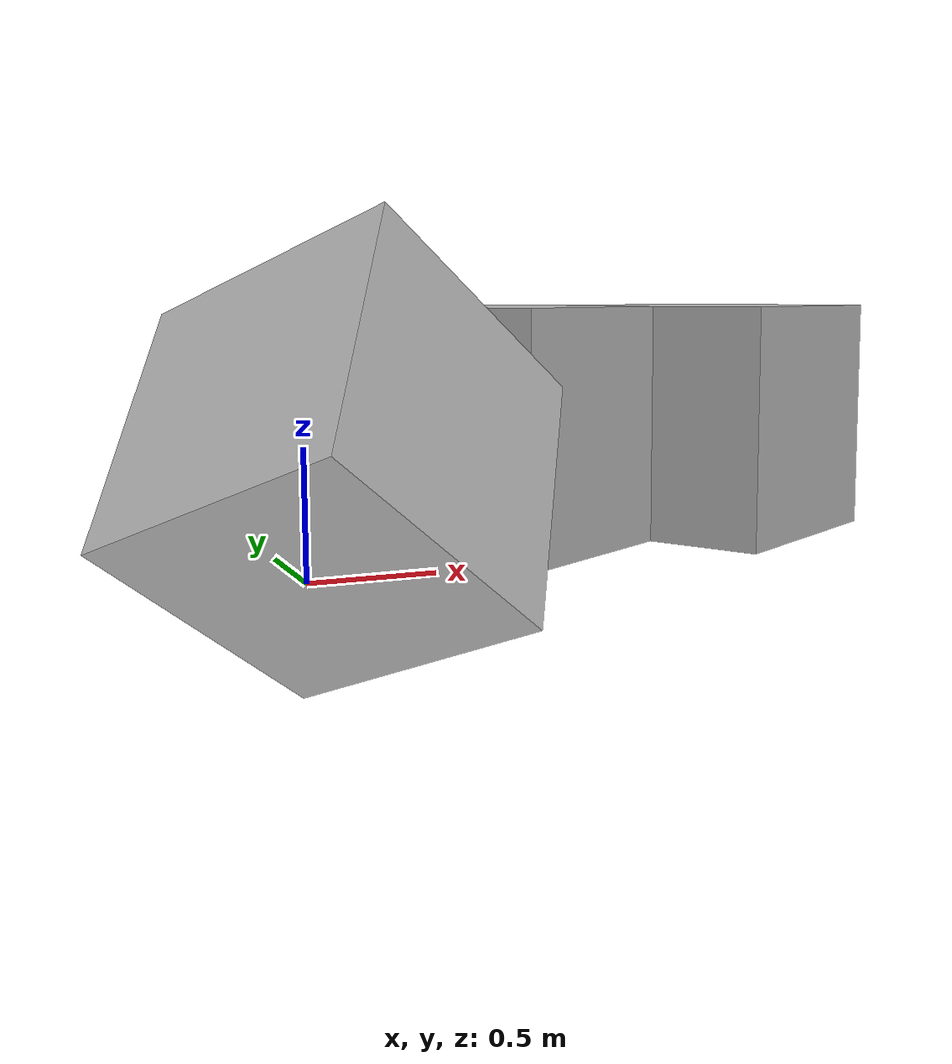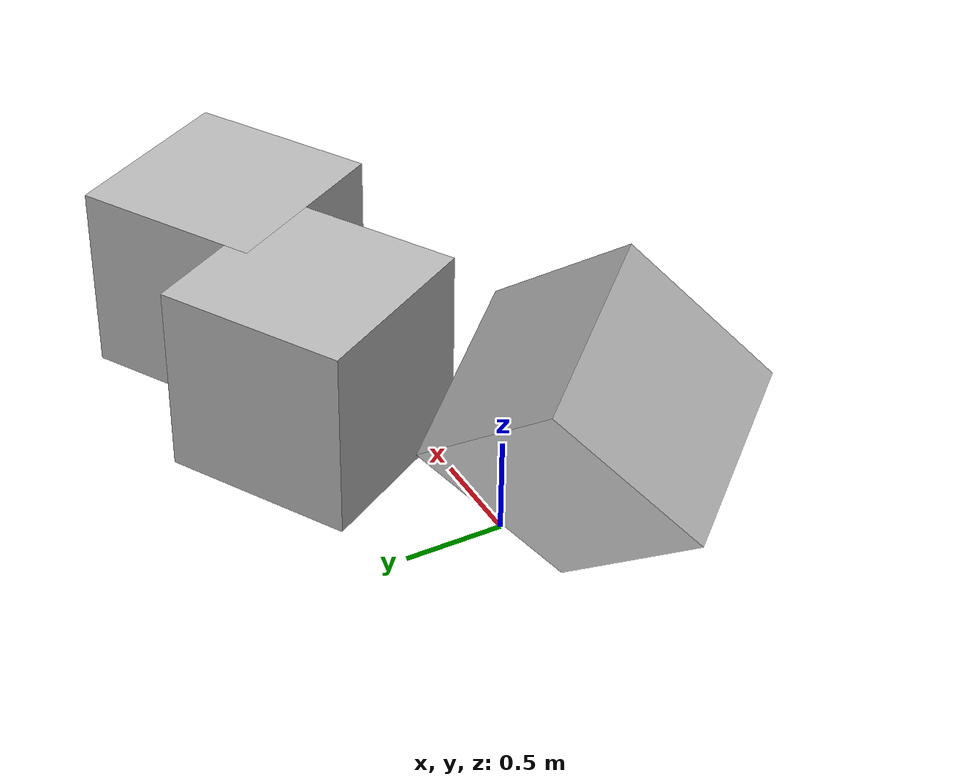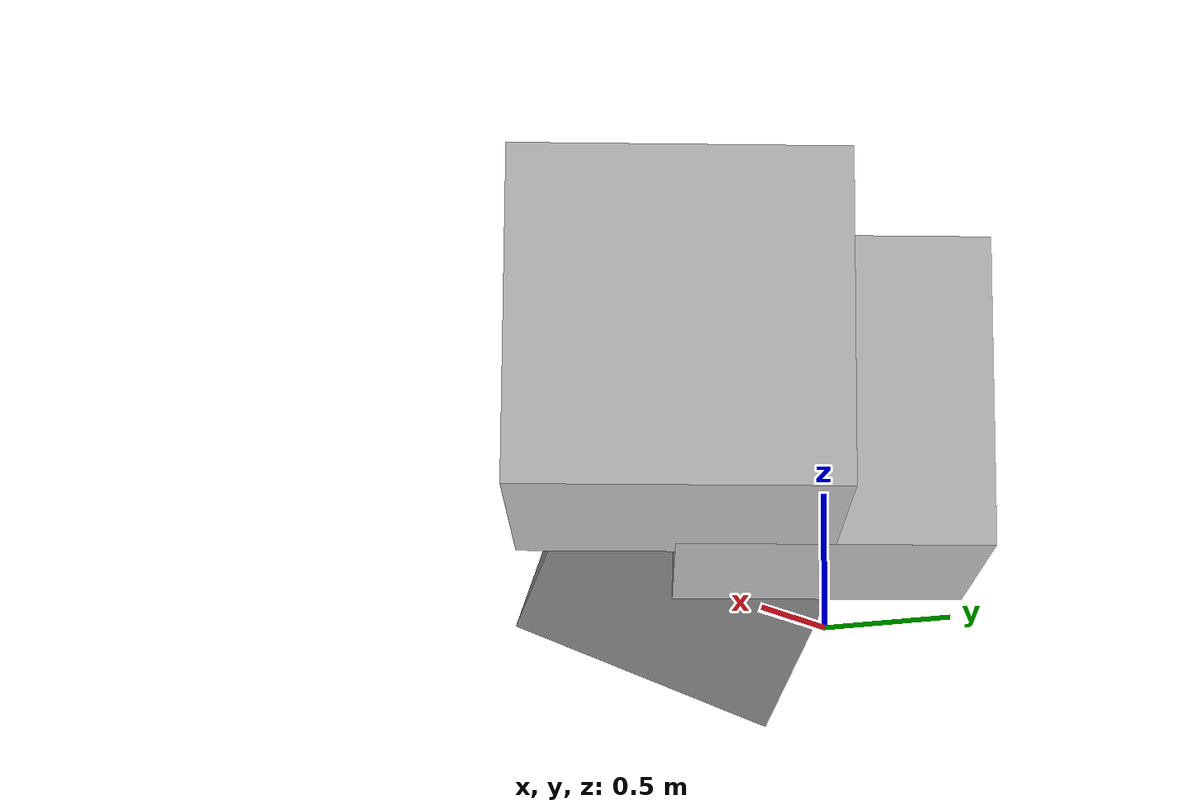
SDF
<?xml version='1.0'?>
<sdf version='1.6'>
		<model name="testfixed">
			<self_collide>true</self_collide>
			<pose>0.0 0.0 0.0 0.0 0.0 0.0</pose>
			<!-- Start of parts of the pmodel testfixed -->
				<!-- Start of declarations for part "testfixed::TLB" -->
					<!-- Start of parts of part "testfixed::TLB" -->
					<!-- End of parts of part "testfixed::TLB" -->

					<!-- Start of links of part "testfixed::TLB" -->
					<!-- link full name is testfixed::TLB::linkB -->
					<link name="1-linkB">
							<pose>0.0 -0.5 0.5 1.0471999645233154 -0.785398006439209 1.0471999645233154</pose>
							<inertial>
								<pose>0.0 0.0 0.0 0.0 0.0 0.0</pose>
								<inertia>
									<ixx>1.0</ixx>
									<ixy>0.0</ixy>
									<ixz>0.0</ixz>
									<iyy>1.0</iyy>
									<iyz>0.0</iyz>
									<izz>1.0</izz>
								</inertia>
								<mass>1.0</mass>
							</inertial>
							<!-- body full name is testfixed::TLB::linkB::bodyB -->
							<collision name="1--bodyB">
								<laser_retro>0.0</laser_retro>
								<pose>0.0 0.0 0.0 0.0 0.0 0.0</pose>
								<geometry>
									<box>
										<size>1.0 1.0 1.0</size>
									</box>
								</geometry>
								<surface>
									<bounce>
										<restitution_coefficient>0.0</restitution_coefficient>
										<threshold>100000.0</threshold>
									</bounce>
									<friction>
										<ode>
											<mu>1.0</mu>
											<mu2>1.0</mu2>
											<fdir1>0.0 0.0 0.0</fdir1>
											<slip1>0.0</slip1>
											<slip2>0.0</slip2>
										</ode>
										<torsional>
											<coefficient>1.0</coefficient>
											<surface_radius>0.0</surface_radius>
										</torsional>
									</friction>
								</surface>
							</collision>
							<visual name="1--bodyB">
								<laser_retro>0.0</laser_retro>
								<pose>0.0 0.0 0.0 0.0 0.0 0.0</pose>
								<geometry>
									<box>
										<size>1.0 1.0 1.0</size>
									</box>
								</geometry>
								<surface>
									<bounce>
										<restitution_coefficient>0.0</restitution_coefficient>
										<threshold>100000.0</threshold>
									</bounce>
									<friction>
										<ode>
											<mu>1.0</mu>
											<mu2>1.0</mu2>
											<fdir1>0.0 0.0 0.0</fdir1>
											<slip1>0.0</slip1>
											<slip2>0.0</slip2>
										</ode>
										<torsional>
											<coefficient>1.0</coefficient>
											<surface_radius>0.0</surface_radius>
										</torsional>
									</friction>
								</surface>
							</visual>
					</link>
					<!-- End of links of part "testfixed::TLB" -->

					<!-- Start of joints of part "testfixed::TLB" -->
					<!-- End of joints of part "testfixed::TLB" -->

					<!-- Start of fixed connections of part "testfixed::TLB" -->
					<!-- fixed joint full name is testfixed::TLB::linkB::fixedJoint::testfixed::TLA::linkA from testfixed::TLB::linkB to testfixed::TLA::linkA -->
					<joint name="3-fixedJoint" type="fixed">
						<parent>1-linkB</parent>
						<child>2-linkA</child>
						<axis><xyz>0 0 1</xyz></axis>
					</joint>

					<!-- End of fixed connections of part "testfixed::TLB" -->
				<!-- End of declarations for part "testfixed::TLB" -->
				<!-- Start of declarations for part "testfixed::TLA" -->
					<!-- Start of parts of part "testfixed::TLA" -->
					<!-- Start of declarations for part "testfixed::TLA::TLC" -->
						<!-- Start of parts of part "testfixed::TLA::TLC" -->
						<!-- End of parts of part "testfixed::TLA::TLC" -->

						<!-- Start of links of part "testfixed::TLA::TLC" -->
						<!-- link full name is testfixed::TLA::TLC::linkC -->
						<link name="4-linkC">
								<pose>2.0 0.5 0.5 1.5707999467849731 3.141590118408203 -1.0471999645233154</pose>
								<inertial>
									<pose>0.0 0.0 0.0 0.0 0.0 0.0</pose>
									<inertia>
										<ixx>1.0</ixx>
										<ixy>0.0</ixy>
										<ixz>0.0</ixz>
										<iyy>1.0</iyy>
										<iyz>0.0</iyz>
										<izz>1.0</izz>
									</inertia>
									<mass>1.0</mass>
								</inertial>
								<!-- body full name is testfixed::TLA::TLC::linkC::bodyC -->
								<collision name="2--bodyC">
									<laser_retro>0.0</laser_retro>
									<pose>0.0 0.0 0.0 0.0 0.0 0.0</pose>
									<geometry>
										<box>
											<size>1.0 1.0 1.0</size>
										</box>
									</geometry>
									<surface>
										<bounce>
											<restitution_coefficient>0.0</restitution_coefficient>
											<threshold>100000.0</threshold>
										</bounce>
										<friction>
											<ode>
												<mu>1.0</mu>
												<mu2>1.0</mu2>
												<fdir1>0.0 0.0 0.0</fdir1>
												<slip1>0.0</slip1>
												<slip2>0.0</slip2>
											</ode>
											<torsional>
												<coefficient>1.0</coefficient>
												<surface_radius>0.0</surface_radius>
											</torsional>
										</friction>
									</surface>
								</collision>
								<visual name="2--bodyC">
									<laser_retro>0.0</laser_retro>
									<pose>0.0 0.0 0.0 0.0 0.0 0.0</pose>
									<geometry>
										<box>
											<size>1.0 1.0 1.0</size>
										</box>
									</geometry>
									<surface>
										<bounce>
											<restitution_coefficient>0.0</restitution_coefficient>
											<threshold>100000.0</threshold>
										</bounce>
										<friction>
											<ode>
												<mu>1.0</mu>
												<mu2>1.0</mu2>
												<fdir1>0.0 0.0 0.0</fdir1>
												<slip1>0.0</slip1>
												<slip2>0.0</slip2>
											</ode>
											<torsional>
												<coefficient>1.0</coefficient>
												<surface_radius>0.0</surface_radius>
											</torsional>
										</friction>
									</surface>
								</visual>
						</link>
						<!-- End of links of part "testfixed::TLA::TLC" -->

						<!-- Start of joints of part "testfixed::TLA::TLC" -->
						<!-- End of joints of part "testfixed::TLA::TLC" -->

						<!-- Start of fixed connections of part "testfixed::TLA::TLC" -->
						<!-- fixed joint full name is testfixed::TLA::TLC::linkC::fixedJoint::testfixed::TLA::linkA from testfixed::TLA::TLC::linkC to testfixed::TLA::linkA -->
						<joint name="5-fixedJoint" type="fixed">
							<parent>4-linkC</parent>
							<child>2-linkA</child>
							<axis><xyz>0 0 1</xyz></axis>
						</joint>

						<!-- End of fixed connections of part "testfixed::TLA::TLC" -->
					<!-- End of declarations for part "testfixed::TLA::TLC" -->
					<!-- End of parts of part "testfixed::TLA" -->

					<!-- Start of links of part "testfixed::TLA" -->
					<!-- link full name is testfixed::TLA::linkA -->
					<link name="2-linkA">
							<pose>1.0 0.5 0.5 1.5707999467849731 3.141590118408203 -1.0471999645233154</pose>
							<inertial>
								<pose>0.0 0.0 0.0 0.0 0.0 0.0</pose>
								<inertia>
									<ixx>1.0</ixx>
									<ixy>0.0</ixy>
									<ixz>0.0</ixz>
									<iyy>1.0</iyy>
									<iyz>0.0</iyz>
									<izz>1.0</izz>
								</inertia>
								<mass>1.0</mass>
							</inertial>
							<!-- body full name is testfixed::TLA::linkA::bodyA -->
							<collision name="3--bodyA">
								<laser_retro>0.0</laser_retro>
								<pose>0.0 0.0 0.0 0.0 0.0 0.0</pose>
								<geometry>
									<box>
										<size>1.0 1.0 1.0</size>
									</box>
								</geometry>
								<surface>
									<bounce>
										<restitution_coefficient>0.0</restitution_coefficient>
										<threshold>100000.0</threshold>
									</bounce>
									<friction>
										<ode>
											<mu>1.0</mu>
											<mu2>1.0</mu2>
											<fdir1>0.0 0.0 0.0</fdir1>
											<slip1>0.0</slip1>
											<slip2>0.0</slip2>
										</ode>
										<torsional>
											<coefficient>1.0</coefficient>
											<surface_radius>0.0</surface_radius>
										</torsional>
									</friction>
								</surface>
							</collision>
							<visual name="3--bodyA">
								<laser_retro>0.0</laser_retro>
								<pose>0.0 0.0 0.0 0.0 0.0 0.0</pose>
								<geometry>
									<box>
										<size>1.0 1.0 1.0</size>
									</box>
								</geometry>
								<surface>
									<bounce>
										<restitution_coefficient>0.0</restitution_coefficient>
										<threshold>100000.0</threshold>
									</bounce>
									<friction>
										<ode>
											<mu>1.0</mu>
											<mu2>1.0</mu2>
											<fdir1>0.0 0.0 0.0</fdir1>
											<slip1>0.0</slip1>
											<slip2>0.0</slip2>
										</ode>
										<torsional>
											<coefficient>1.0</coefficient>
											<surface_radius>0.0</surface_radius>
										</torsional>
									</friction>
								</surface>
							</visual>
					</link>
					<!-- End of links of part "testfixed::TLA" -->

					<!-- Start of joints of part "testfixed::TLA" -->
					<!-- End of joints of part "testfixed::TLA" -->

					<!-- Start of fixed connections of part "testfixed::TLA" -->

					<!-- End of fixed connections of part "testfixed::TLA" -->
				<!-- End of declarations for part "testfixed::TLA" -->
			<!-- End of parts of the pmodel testfixed -->

			<!-- Start of links of the pmodel testfixed -->
			<!-- End of links of the pmodel testfixed -->

			<!-- Start of joints of the pmodel testfixed -->
			<!-- End of joints of the pmodel testfixed -->

			<!-- Start of fixed connections of the pmodel testfixed -->
			<!-- End of fixed connections of the pmodel testfixed -->
		</model>
</sdf>
